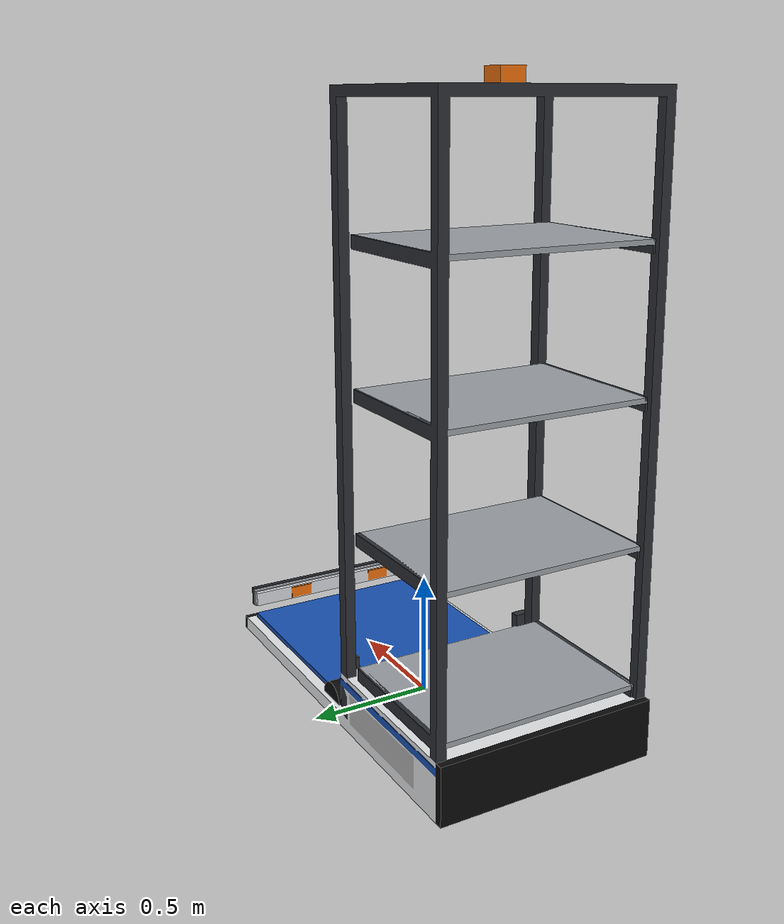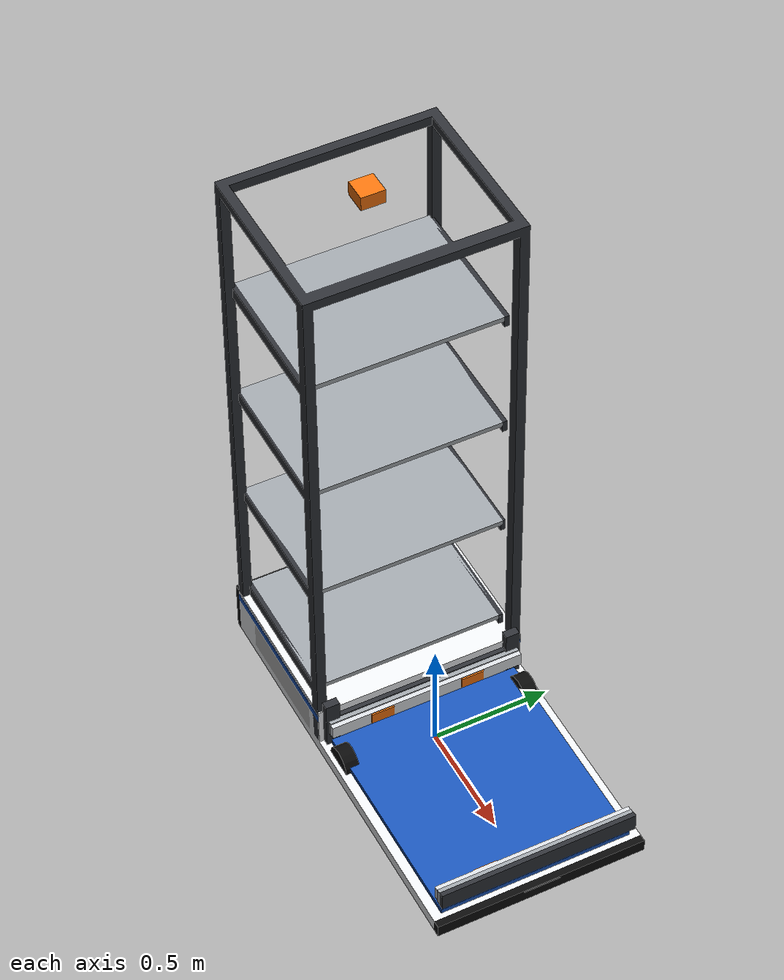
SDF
<?xml version="1.0"?>
<sdf version="1.6">
    <model name="picker_robot">
      <pose>0 0 0 0 0 0</pose>
      <link name="base_link">
        <pose>0 0 0 0 0 0</pose>
        <inertial><mass>250</mass><inertia><ixx>20.21</ixx><iyy>69.34</iyy><izz>82.88</izz>
          <ixy>0</ixy><ixz>0</ixz><iyz>0</iyz></inertia></inertial>
        <collision name="chassis_front">
          <pose>0.365 0 0.0375 0 0 0</pose>
          <geometry><box><size>1.05 0.9 0.075</size></box></geometry><surface><friction><ode><mu>0</mu><mu2>0</mu2></ode></friction></surface>
        </collision>
        <collision name="chassis_rear">
          <pose>-0.525 0 0.125 0 0 0</pose>
          <geometry><box><size>0.73 0.9 0.25</size></box></geometry><surface><friction><ode><mu>0</mu><mu2>0</mu2></ode></friction></surface>
        </collision>
        <collision name="mast_-1">
          <pose>-0.16 -0.43 1.35 0 0 0</pose>
          <geometry><box><size>0.05 0.04 2.2</size></box></geometry><surface><friction><ode><mu>0</mu><mu2>0</mu2></ode></friction></surface>
        </collision>
        <collision name="mast_1">
          <pose>-0.16 0.43 1.35 0 0 0</pose>
          <geometry><box><size>0.05 0.04 2.2</size></box></geometry><surface><friction><ode><mu>0</mu><mu2>0</mu2></ode></friction></surface>
        </collision>
        <sensor name="laser" type="gpu_ray">
          <pose>0.9 0 0.05 0 0 0</pose>
          <update_rate>10</update_rate>
          <ray>
            <scan><horizontal><samples>540</samples><resolution>1</resolution>
              <min_angle>-2.356</min_angle><max_angle>2.356</max_angle></horizontal></scan>
            <range><min>0.1</min><max>20</max><resolution>0.01</resolution></range>
            <noise><type>gaussian</type><mean>0</mean><stddev>0.01</stddev></noise>
          </ray>
          <plugin name="laser" filename="libgazebo_ros_ray_sensor.so">
            <ros><namespace>/picker_robot</namespace><remapping>~/out:=scan</remapping></ros>
            <output_type>sensor_msgs/LaserScan</output_type>
            <frame_name>picker_robot/laser</frame_name>
          </plugin>
        </sensor>
        <visual name="visual">
          <cast_shadows>false</cast_shadows>
          <geometry><mesh><uri>model://picker_robot/meshes/base.dae</uri></mesh></geometry>
        </visual>
      </link>
      <link name="carriage">
        <pose>0.37 0 0.1 0 0 0</pose>
        <inertial><mass>15</mass><inertia><ixx>0.853</ixx><iyy>1.117</iyy><izz>1.945</izz>
          <ixy>0</ixy><ixz>0</ixz><iyz>0</iyz></inertia></inertial>
        <visual name="visual">
          <cast_shadows>false</cast_shadows>
          <geometry><mesh><uri>model://picker_robot/meshes/carriage.dae</uri></mesh></geometry>
        </visual>
      </link>
      <link name="stage">
        <pose>0.37 0 0.1 0 0 0</pose>
        <inertial><mass>2</mass><inertia><ixx>0.1184</ixx><iyy>0.1481</iyy><izz>0.2649</izz>
          <ixy>0</ixy><ixz>0</ixz><iyz>0</iyz></inertia></inertial>
        <visual name="visual">
          <cast_shadows>false</cast_shadows>
          <geometry><mesh><uri>model://picker_robot/meshes/stage.dae</uri></mesh></geometry>
        </visual>
      </link>
      <link name="arm">
        <pose>0.37 0 0.1 0 0 0</pose>
        <inertial><mass>2</mass><inertia><ixx>0.1182</ixx><iyy>0.1356</iyy><izz>0.2526</izz>
          <ixy>0</ixy><ixz>0</ixz><iyz>0</iyz></inertia></inertial>
        <visual name="visual">
          <cast_shadows>false</cast_shadows>
          <geometry><mesh><uri>model://picker_robot/meshes/arm.dae</uri></mesh></geometry>
        </visual>
      </link>
      <joint name="lift_joint" type="prismatic">
        <parent>base_link</parent><child>carriage</child>
        <axis><xyz>0 0 1</xyz><limit><lower>0</lower><upper>1.9</upper>
          <effort>5000</effort><velocity>1</velocity></limit></axis>
      </joint>
      <joint name="reach_joint" type="prismatic">
        <parent>carriage</parent><child>stage</child>
        <axis><xyz>0 1 0</xyz><limit><lower>-0.75</lower><upper>0.75</upper>
          <effort>5000</effort><velocity>1</velocity></limit></axis>
      </joint>
      <joint name="reach2_joint" type="prismatic">
        <parent>stage</parent><child>arm</child>
        <axis><xyz>0 1 0</xyz><limit><lower>-0.75</lower><upper>0.75</upper>
          <effort>5000</effort><velocity>1</velocity></limit></axis>
      </joint>
      <plugin name="custom_robot" filename="/workspace/models/picker_robot/plugins/libcustom_robot.so">
        <ros><namespace>/picker_robot</namespace></ros>
        <role>picker</role>
        <max_speed>1.2</max_speed>
        <max_turn_rate>1.2</max_turn_rate>
        <acceleration>0.8</acceleration>
        <tray_x>0.37</tray_x>
        <tray_zero>0.1</tray_zero>
        <reach_max>1.5</reach_max>
        <slot_x>-0.53</slot_x>
        <slot_heights>0.3 0.85 1.4 1.95</slot_heights>
        <aisle_half>0.78</aisle_half>
        <laser_pose>0.9 0 0.05 0 0 0</laser_pose>
      </plugin>
    </model>
</sdf>
